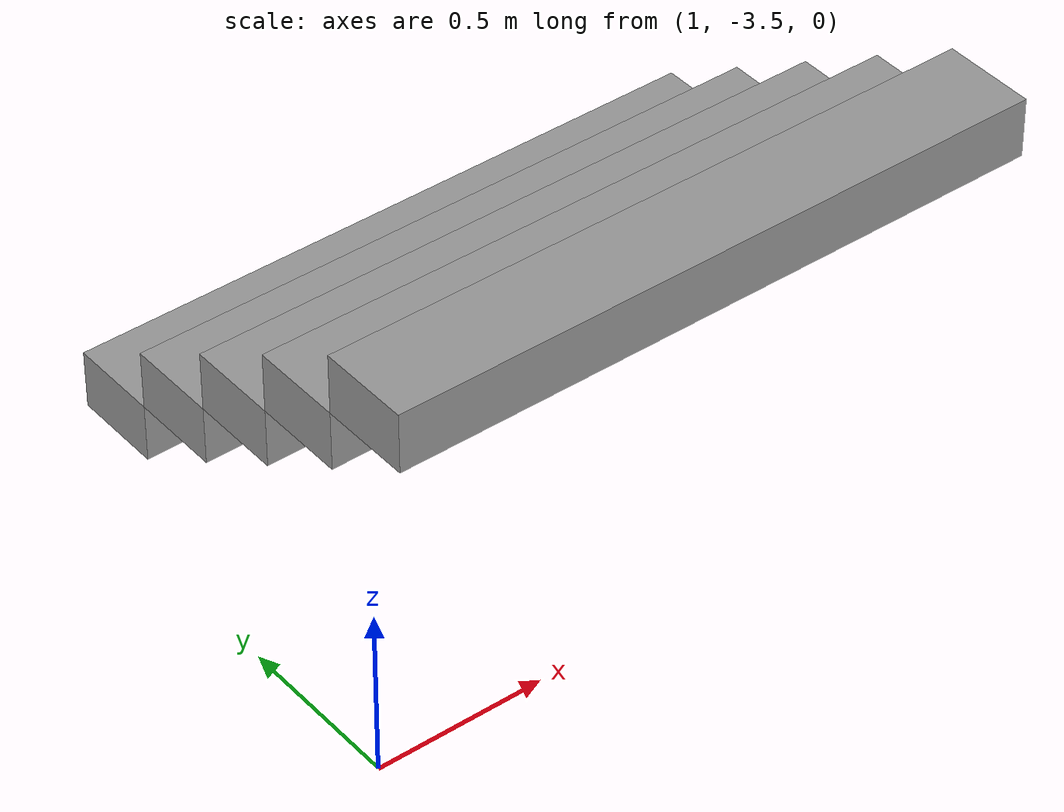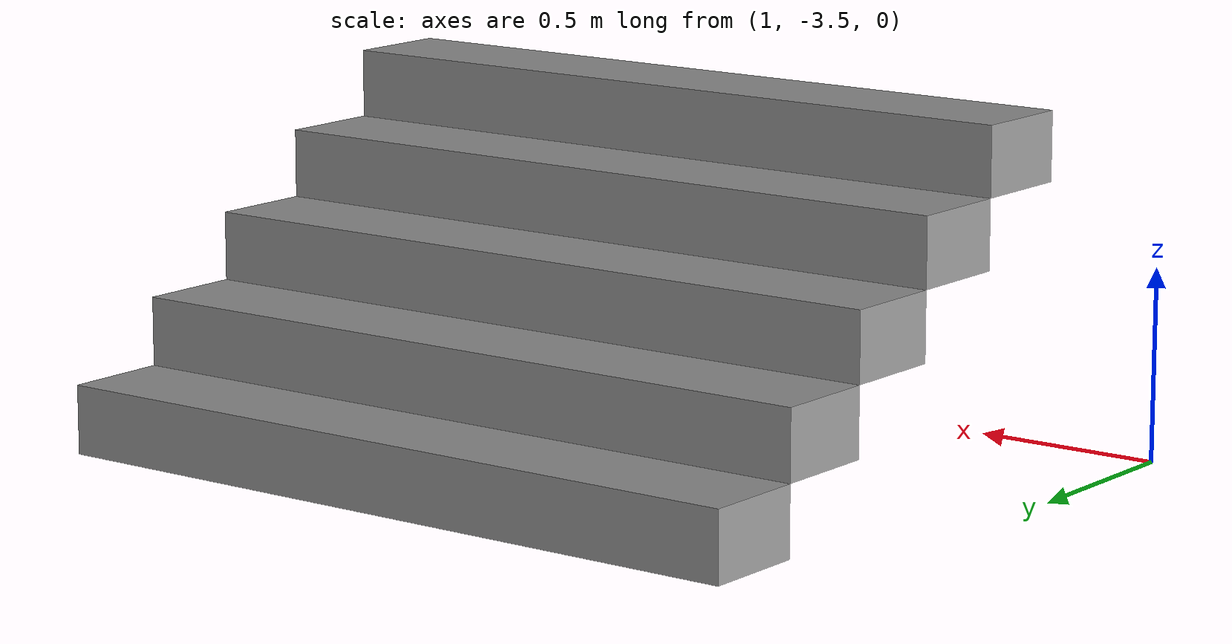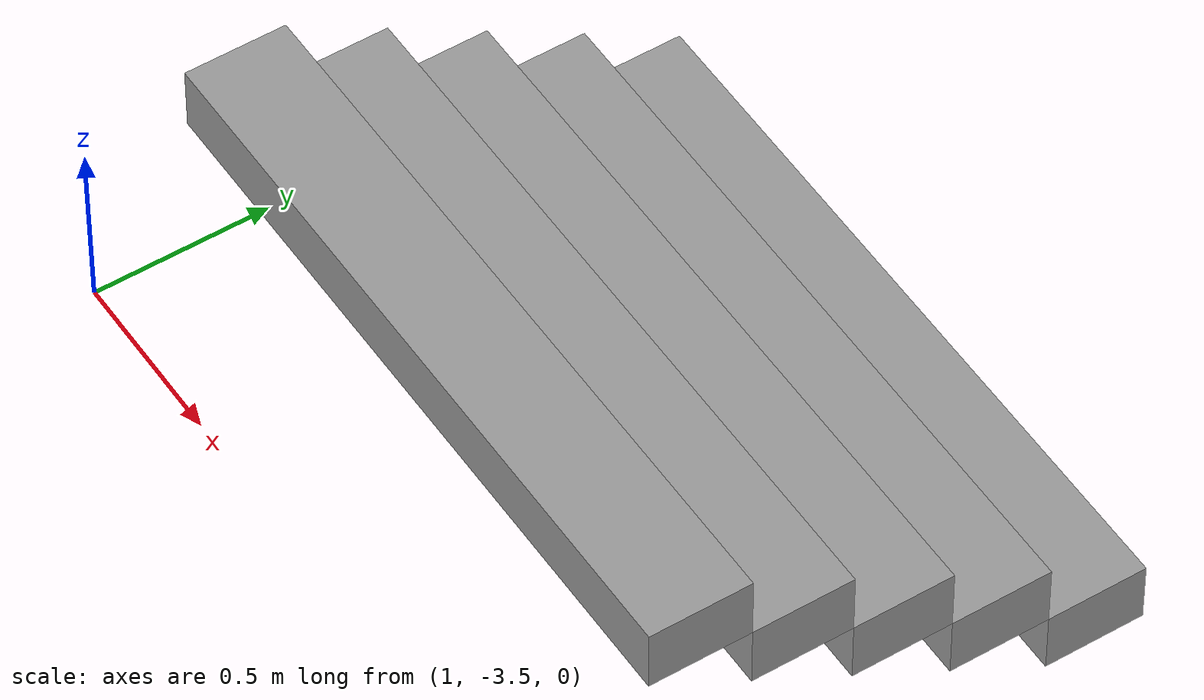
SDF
<?xml version='1.0'?>
<sdf version='1.6'>
  <model name='industrialStairs'>
    <pose frame=''>2.21 -2.63 0 0 -0 0</pose>
    <link name='Stairs_1'>
      <visual name='Stairs_1_Visual_0'>
        <pose frame=''>0 0.56 0.09 0 -0 0</pose>
        <geometry>
          <box>
            <size>2 0.28 0.18</size>
          </box>
        </geometry>
        <material>
          <script>
            <uri>file://media/materials/scripts/gazebo.material</uri>
            <name>Gazebo/Grey</name>
          </script>
          <ambient>1 1 1 1</ambient>
        </material>
      </visual>
      <collision name='Stairs_1_Collision_0'>
        <geometry>
          <box>
            <size>2 0.28 0.18</size>
          </box>
        </geometry>
        <pose frame=''>0 0.56 0.09 0 -0 0</pose>
      </collision>
      <visual name='Stairs_1_Visual_1'>
        <pose frame=''>0 0.28 0.27 0 -0 0</pose>
        <geometry>
          <box>
            <size>2 0.28 0.18</size>
          </box>
        </geometry>
        <material>
          <script>
            <uri>file://media/materials/scripts/gazebo.material</uri>
            <name>Gazebo/Grey</name>
          </script>
          <ambient>1 1 1 1</ambient>
        </material>
      </visual>
      <collision name='Stairs_1_Collision_1'>
        <geometry>
          <box>
            <size>2 0.28 0.18</size>
          </box>
        </geometry>
        <pose frame=''>0 0.28 0.27 0 -0 0</pose>
      </collision>
      <visual name='Stairs_1_Visual_2'>
        <pose frame=''>0 0 0.45 0 -0 0</pose>
        <geometry>
          <box>
            <size>2 0.28 0.18</size>
          </box>
        </geometry>
        <material>
          <script>
            <uri>file://media/materials/scripts/gazebo.material</uri>
            <name>Gazebo/Grey</name>
          </script>
          <ambient>1 1 1 1</ambient>
        </material>
      </visual>
      <collision name='Stairs_1_Collision_2'>
        <geometry>
          <box>
            <size>2 0.28 0.18</size>
          </box>
        </geometry>
        <pose frame=''>0 0 0.45 0 -0 0</pose>
      </collision>
      <visual name='Stairs_1_Visual_3'>
        <pose frame=''>0 -0.28 0.63 0 -0 0</pose>
        <geometry>
          <box>
            <size>2 0.28 0.18</size>
          </box>
        </geometry>
        <material>
          <script>
            <uri>file://media/materials/scripts/gazebo.material</uri>
            <name>Gazebo/Grey</name>
          </script>
          <ambient>1 1 1 1</ambient>
        </material>
      </visual>
      <collision name='Stairs_1_Collision_3'>
        <geometry>
          <box>
            <size>2 0.28 0.18</size>
          </box>
        </geometry>
        <pose frame=''>0 -0.28 0.63 0 -0 0</pose>
      </collision>
      <visual name='Stairs_1_Visual_4'>
        <pose frame=''>0 -0.56 0.81 0 -0 0</pose>
        <geometry>
          <box>
            <size>2 0.28 0.18</size>
          </box>
        </geometry>
        <material>
          <script>
            <uri>file://media/materials/scripts/gazebo.material</uri>
            <name>Gazebo/Grey</name>
          </script>
          <ambient>1 1 1 1</ambient>
        </material>
      </visual>
      <collision name='Stairs_1_Collision_4'>
        <geometry>
          <box>
            <size>2 0.28 0.18</size>
          </box>
        </geometry>
        <pose frame=''>0 -0.56 0.81 0 -0 0</pose>
      </collision>
    </link>
    <static>1</static>
  </model>
</sdf>
